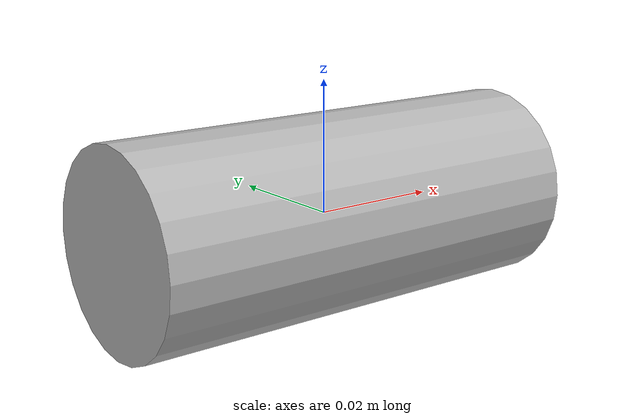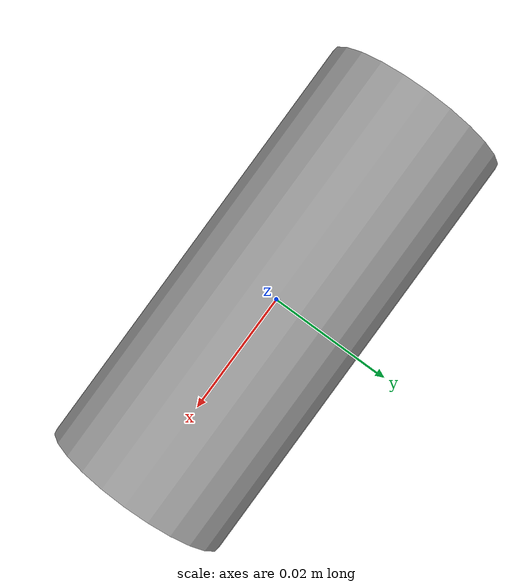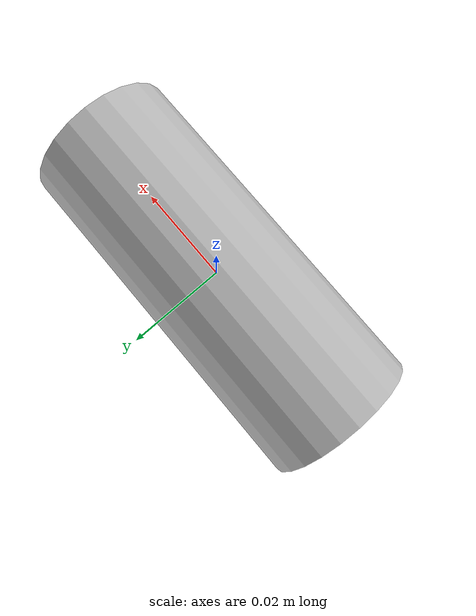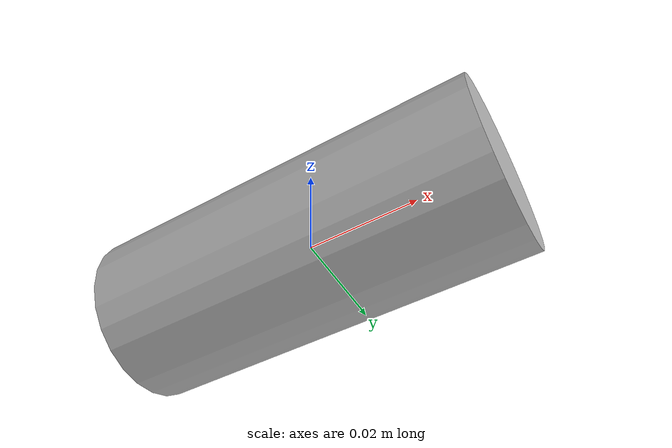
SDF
<?xml version="1.0"?>
<sdf version='1.6'>
  <model name='dumbbell'>

	  <link name="dumbbell">
	  	<inertial>
	      <mass>0.988882</mass>
	      <inertia>
	        <ixx>0.162992</ixx>
	        <ixy>0</ixy>
	        <ixz>0</ixz>
	        <iyy>0.162992</iyy>
	        <iyz>0</iyz>
	        <izz>0.164814</izz>
	      </inertia>
	    </inertial>

      <pose>0 0 0 0 -0 0</pose>

     <visual>
	      <pose>0 0 0 0 1.5708 0</pose>
				<geometry>
	        <cylinder>
	          <radius>0.015</radius>
	          <length>0.07</length>
	        </cylinder>
	      </geometry>
	    	<material name="green">
        	<color rgba="0 1 0 1" />
      	</material>
	    </visual>

	    <collision>
	      <pose>-0.02 0 0 0 -0 0</pose>
	      <geometry>
	        <sphere>
	          <radius>0.015</radius>
	        </sphere>
	      </geometry>
	    </collision>

	    <collision>
	      <pose>0.02 0 0 0 -0 0</pose>
	      <geometry>
	        <sphere>
	          <radius>0.015</radius>
	        </sphere>
	      </geometry>
	    </collision>

	  </link>

	</model>
</sdf>
